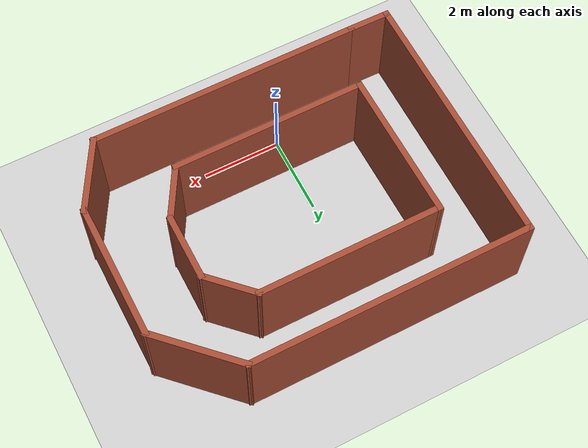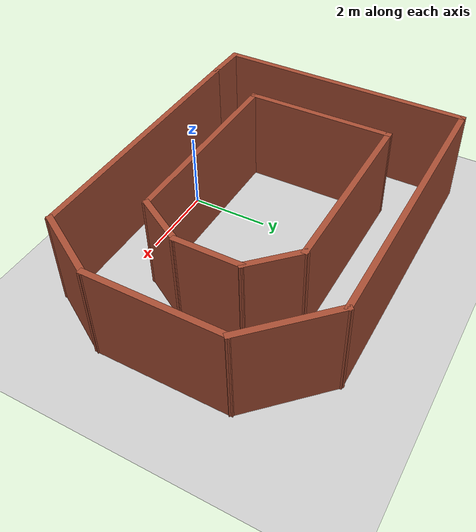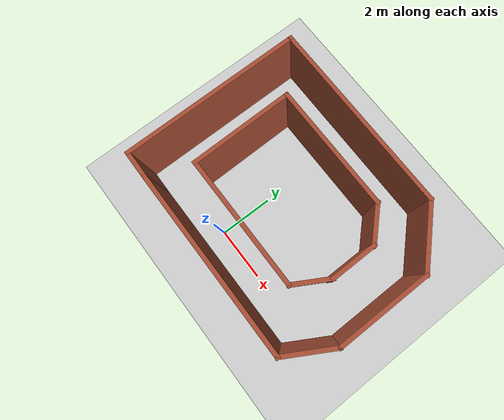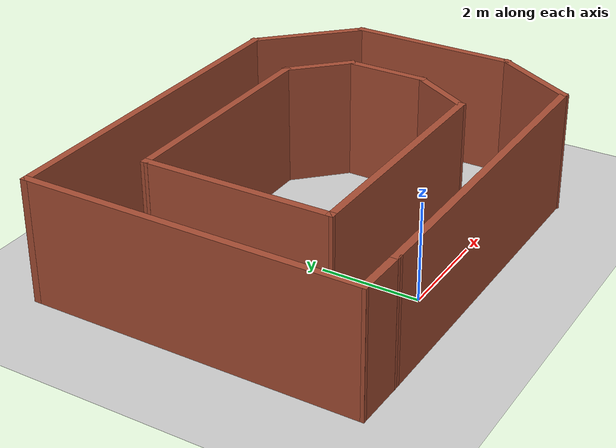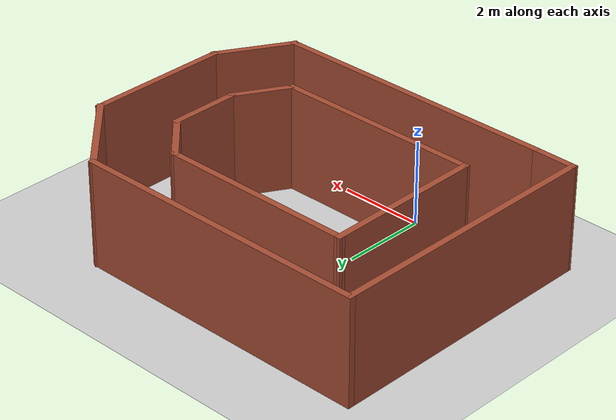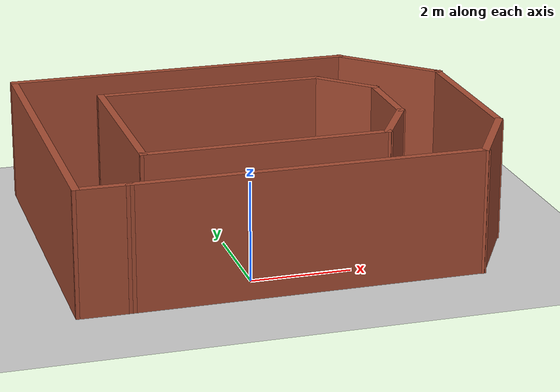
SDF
<sdf version="1.7">
 <world name="default">
  <light name="sun" type="directional">
   <pose>0 0 10 0 -0 0</pose>
   <diffuse>0.8 0.8 0.8 1</diffuse>
   <specular>0.1 0.1 0.1 1</specular>
   <attenuation>
    <range>1000</range>
    <constant>0.9</constant>
    <linear>0.01</linear>
    <quadratic>0.001</quadratic>
   </attenuation>
   <direction>-0.5 0.5 -1</direction>
   <spot><inner_angle>0</inner_angle><outer_angle>0</outer_angle><falloff>0</falloff></spot>
  </light>
  <model name="ground_plane">
   <static>1</static>
   <link name="link">
    <collision name="collision">
     <geometry><plane><normal>0 0 1</normal><size>100 100</size></plane></geometry>
     <surface><friction><ode><mu>100</mu><mu2>50</mu2></ode></friction></surface>
    </collision>
    <visual name="visual">
     <cast_shadows>0</cast_shadows>
     <geometry><plane><normal>0 0 1</normal><size>100 100</size></plane></geometry>
     <material>
      <script><uri>file://media/materials/scripts/gazebo.material</uri><name>Gazebo/Grey</name></script>
     </material>
    </visual>
   </link>
  </model>
  <gravity>0 0 -9.8</gravity>
  <magnetic_field>6e-06 2.3e-05 -4.2e-05</magnetic_field>
  <atmosphere type="adiabatic"/>
  <physics name="default_physics" default="0" type="ode">
   <max_step_size>0.001</max_step_size>
   <real_time_factor>1</real_time_factor>
   <real_time_update_rate>1000</real_time_update_rate>
  </physics>
  <scene><ambient>0.4 0.4 0.4 1</ambient><background>0.7 0.7 0.7 1</background><shadows>1</shadows></scene>
  <spherical_coordinates>
   <surface_model>EARTH_WGS84</surface_model>
   <latitude_deg>0</latitude_deg>
   <longitude_deg>0</longitude_deg>
   <elevation>0</elevation>
   <heading_deg>0</heading_deg>
  </spherical_coordinates>
  <model name="wall_following">
   <pose>0.933171 2.51348 0 0 -0 0</pose>
   <link name="Wall_17">
    <collision name="Wall_17_Collision">
     <geometry><box><size>7 0.15 2.5</size></box></geometry>
     <pose>0 0 1.25 0 -0 0</pose>
    </collision>
    <visual name="Wall_17_Visual">
     <pose>0 0 1.25 0 -0 0</pose>
     <geometry><box><size>7 0.15 2.5</size></box></geometry>
     <material>
      <script><uri>file://media/materials/scripts/gazebo.material</uri><name>Gazebo/Bricks</name></script>
      <ambient>1 1 1 1</ambient>
     </material>
    </visual>
    <pose>0.01584 -3.30873 0 0 -0 3.14159</pose>
   </link>
   <link name="Wall_20">
    <collision name="Wall_20_Collision">
     <geometry><box><size>2 0.15 2.5</size></box></geometry>
     <pose>0 0 1.25 0 -0 0</pose>
    </collision>
    <visual name="Wall_20_Visual">
     <pose>0 0 1.25 0 -0 0</pose>
     <geometry><box><size>2 0.15 2.5</size></box></geometry>
     <material>
      <script><uri>file://media/materials/scripts/gazebo.material</uri><name>Gazebo/Bricks</name></script>
      <ambient>1 1 1 1</ambient>
     </material>
    </visual>
    <pose>3.90334 -2.50766 0 0 0 -2.0944</pose>
   </link>
   <link name="Wall_22">
    <collision name="Wall_22_Collision">
     <geometry><box><size>5 0.15 2.5</size></box></geometry>
     <pose>0 0 1.25 0 -0 0</pose>
    </collision>
    <visual name="Wall_22_Visual">
     <pose>0 0 1.25 0 -0 0</pose>
     <geometry><box><size>5 0.15 2.5</size></box></geometry>
     <material>
      <script><uri>file://media/materials/scripts/gazebo.material</uri><name>Gazebo/Bricks</name></script>
      <ambient>1 1 1 1</ambient>
     </material>
    </visual>
    <pose>-0.389971 -1.79293 0 0 -0 0</pose>
   </link>
   <link name="Wall_23">
    <collision name="Wall_23_Collision">
     <geometry><box><size>1.5 0.15 2.5</size></box></geometry>
     <pose>0 0 1.25 0 -0 0</pose>
    </collision>
    <visual name="Wall_23_Visual">
     <pose>0 0 1.25 0 -0 0</pose>
     <geometry><box><size>1.5 0.15 2.5</size></box></geometry>
     <material>
      <script><uri>file://media/materials/scripts/gazebo.material</uri><name>Gazebo/Bricks</name></script>
      <ambient>1 1 1 1</ambient>
     </material>
    </visual>
    <pose>2.37253 -1.20836 0 0 -0 1.0472</pose>
   </link>
   <link name="Wall_24">
    <collision name="Wall_24_Collision">
     <geometry><box><size>1.75 0.15 2.5</size></box></geometry>
     <pose>0 0 1.25 0 -0 0</pose>
    </collision>
    <visual name="Wall_24_Visual">
     <pose>0 0 1.25 0 -0 0</pose>
     <geometry><box><size>1.75 0.15 2.5</size></box></geometry>
     <material>
      <script><uri>file://media/materials/scripts/gazebo.material</uri><name>Gazebo/Bricks</name></script>
      <ambient>1 1 1 1</ambient>
     </material>
    </visual>
    <pose>2.71003 0.176205 0 0 -0 1.5708</pose>
   </link>
   <link name="Wall_25">
    <collision name="Wall_25_Collision">
     <geometry><box><size>1.5 0.15 2.5</size></box></geometry>
     <pose>0 0 1.25 0 -0 0</pose>
    </collision>
    <visual name="Wall_25_Visual">
     <pose>0 0 1.25 0 -0 0</pose>
     <geometry><box><size>1.5 0.15 2.5</size></box></geometry>
     <material>
      <script><uri>file://media/materials/scripts/gazebo.material</uri><name>Gazebo/Bricks</name></script>
      <ambient>1 1 1 1</ambient>
     </material>
    </visual>
    <pose>2.23273 1.4535 0 0 -0 2.35619</pose>
   </link>
   <link name="Wall_26">
    <collision name="Wall_26_Collision">
     <geometry><box><size>4.75 0.15 2.5</size></box></geometry>
     <pose>0 0 1.25 0 -0 0</pose>
    </collision>
    <visual name="Wall_26_Visual">
     <pose>0 0 1.25 0 -0 0</pose>
     <geometry><box><size>4.75 0.15 2.5</size></box></geometry>
     <material>
      <script><uri>file://media/materials/scripts/gazebo.material</uri><name>Gazebo/Bricks</name></script>
      <ambient>1 1 1 1</ambient>
     </material>
    </visual>
    <pose>-0.544565 1.9308 0 0 -0 3.14159</pose>
   </link>
   <link name="Wall_27">
    <collision name="Wall_27_Collision">
     <geometry><box><size>3.87385 0.15 2.5</size></box></geometry>
     <pose>0 0 1.25 0 -0 0</pose>
    </collision>
    <visual name="Wall_27_Visual">
     <pose>0 0 1.25 0 -0 0</pose>
     <geometry><box><size>3.87385 0.15 2.5</size></box></geometry>
     <material>
      <script><uri>file://media/materials/scripts/gazebo.material</uri><name>Gazebo/Bricks</name></script>
      <ambient>1 1 1 1</ambient>
     </material>
    </visual>
    <pose>-2.82977 0.068935 0 0 0 -1.56285</pose>
   </link>
   <link name="Wall_29">
    <collision name="Wall_29_Collision">
     <geometry><box><size>3.5 0.15 2.5</size></box></geometry>
     <pose>0 0 1.25 0 -0 0</pose>
    </collision>
    <visual name="Wall_29_Visual">
     <pose>0 0 1.25 0 -0 0</pose>
     <geometry><box><size>3.5 0.15 2.5</size></box></geometry>
     <material>
      <script><uri>file://media/materials/scripts/gazebo.material</uri><name>Gazebo/Bricks</name></script>
      <ambient>1 1 1 1</ambient>
     </material>
    </visual>
    <pose>4.36584 -0.031584 0 0 0 -1.5708</pose>
   </link>
   <link name="Wall_31">
    <collision name="Wall_31_Collision">
     <geometry><box><size>2.5 0.15 2.5</size></box></geometry>
     <pose>0 0 1.25 0 -0 0</pose>
    </collision>
    <visual name="Wall_31_Visual">
     <pose>0 0 1.25 0 -0 0</pose>
     <geometry><box><size>2.5 0.15 2.5</size></box></geometry>
     <material>
      <script><uri>file://media/materials/scripts/gazebo.material</uri><name>Gazebo/Bricks</name></script>
      <ambient>1 1 1 1</ambient>
     </material>
    </visual>
    <pose>3.53499 2.47427 0 0 0 -0.785398</pose>
   </link>
   <link name="Wall_33">
    <collision name="Wall_33_Collision">
     <geometry><box><size>7.25 0.15 2.5</size></box></geometry>
     <pose>0 0 1.25 0 -0 0</pose>
    </collision>
    <visual name="Wall_33_Visual">
     <pose>0 0 1.25 0 -0 0</pose>
     <geometry><box><size>7.25 0.15 2.5</size></box></geometry>
     <material>
      <script><uri>file://media/materials/scripts/gazebo.material</uri><name>Gazebo/Bricks</name></script>
      <ambient>1 1 1 1</ambient>
     </material>
    </visual>
    <pose>-0.845861 3.30512 0 0 -0 3.14159</pose>
   </link>
   <link name="Wall_34">
    <collision name="Wall_34_Collision">
     <geometry><box><size>6.75 0.15 2.5</size></box></geometry>
     <pose>0 0 1.25 0 -0 0</pose>
    </collision>
    <visual name="Wall_34_Visual">
     <pose>0 0 1.25 0 -0 0</pose>
     <geometry><box><size>6.75 0.15 2.5</size></box></geometry>
     <material>
      <script><uri>file://media/materials/scripts/gazebo.material</uri><name>Gazebo/Bricks</name></script>
      <ambient>1 1 1 1</ambient>
     </material>
    </visual>
    <pose>-4.39586 0.005117 0 0 0 -1.5708</pose>
   </link>
   <link name="Wall_35">
    <collision name="Wall_35_Collision">
     <geometry><box><size>1.1368 0.15 2.5</size></box></geometry>
     <pose>0 0 1.25 0 -0 0</pose>
    </collision>
    <visual name="Wall_35_Visual">
     <pose>0 0 1.25 0 -0 0</pose>
     <geometry><box><size>1.1368 0.15 2.5</size></box></geometry>
     <material>
      <script><uri>file://media/materials/scripts/gazebo.material</uri><name>Gazebo/Bricks</name></script>
      <ambient>1 1 1 1</ambient>
     </material>
    </visual>
    <pose>-3.90251 -3.30181 0 0 0 -0.014034</pose>
   </link>
   <static>1</static>
  </model>
 </world>
</sdf>
